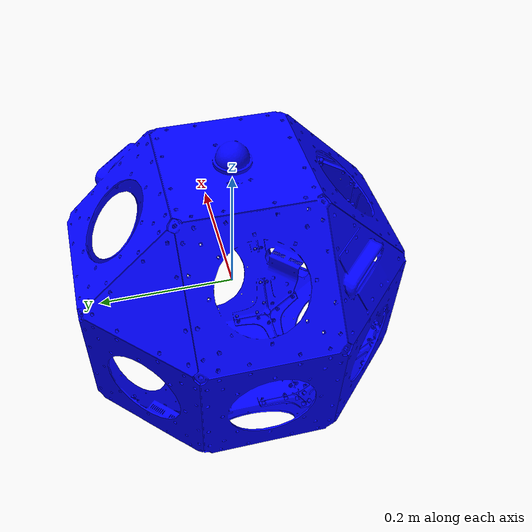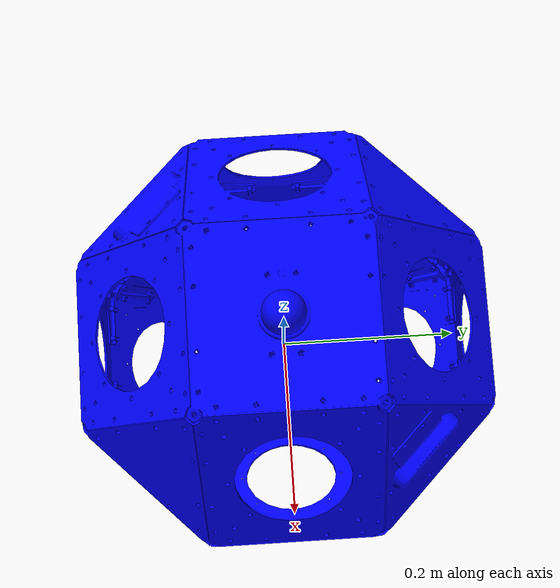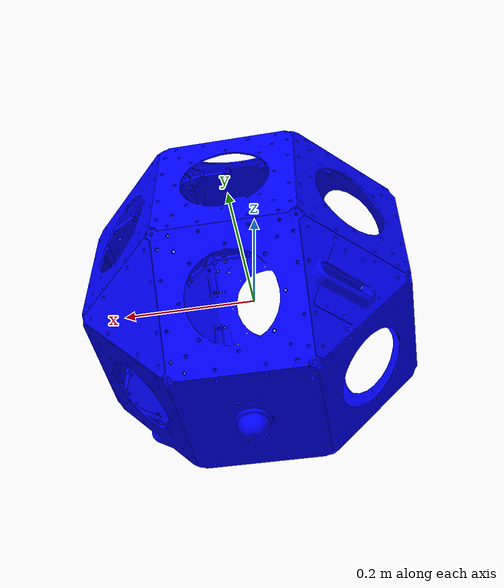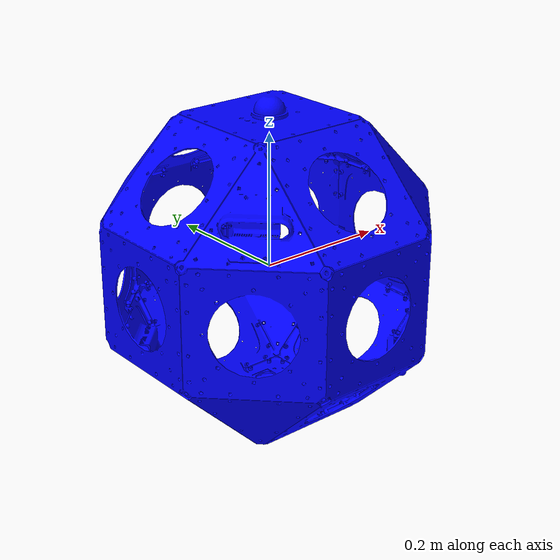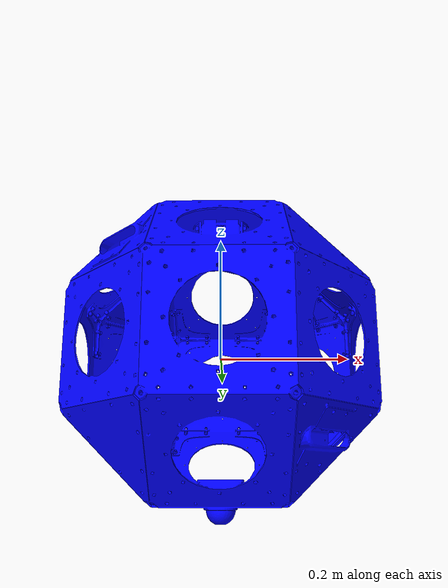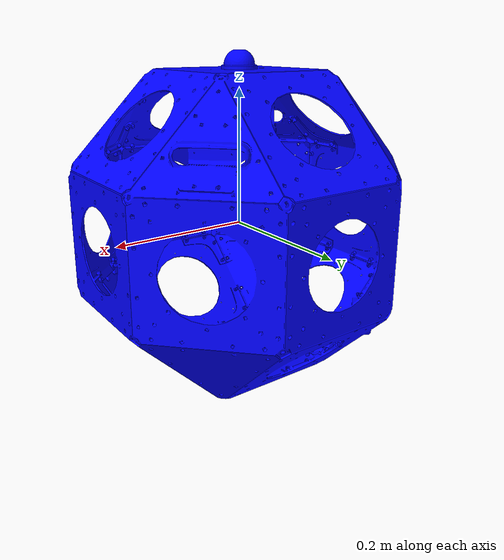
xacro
<?xml version="1.0"?>
<robot name="moonshot_robot" xmlns:xacro="http://www.ros.org/wiki/xacro">

    <material name="white">
        <color rgba="1 1 1 1"/>
    </material>

    <material name="silver">
        <color rgba="0.75 0.75 0.75 1"/>
    </material>

    <material name="black">
        <color rgba="0.2 0.2 0.2 1"/>
    </material>

    <!-- Define some constants -->
    <xacro:property name="polybody_n_1_length" value="0.5"/>
    <xacro:property name="polybody_n_1_width" value="0.15"/>
    <xacro:property name="polybody_n_1_height" value="0.15"/>
    <xacro:property name="polybody_n_1_mass" value="5.0"/>
    <!-- Define the body link -->

    <link name="polybody_n_1_base_link">
        <visual>
            <origin xyz="0 0 0" rpy="0 0  0"/>
            <geometry>
                <mesh filename="package://urdf_tutorial/stl/PolyBody/polybody_fullassem_wo_connector_d435_remesh.stl" scale="0.0001 0.0001 0.0001"/>
            </geometry>
            <material name="black">
                <color rgba="0 0 1 1"/>
            </material>
        </visual>
        <collision>
            <geometry>
                <mesh filename="package://urdf_tutorial/stl/PolyBody/polybody_fullassem_wo_connector_d435_remesh.stl" scale="0.0001 0.0001 0.0001"/>
            </geometry>
        </collision>
        <inertial>
            <mass value="${polybody_n_1_mass}"/>
            <origin xyz="0 0 0"/>
            <inertia ixx="0.1" ixy="0.0" ixz="0.0" iyy="0.1" iyz="0.0" izz="0.1"/>
        </inertial>
    </link>

    <link name="polybody_n_1_link_1"/>
    <link name="polybody_n_1_link_2"/>
    <link name="polybody_n_1_link_3"/>
    <link name="polybody_n_1_link_4"/>

    <link name="polybody_n_1_link_5"/>
    <link name="polybody_n_1_link_6"/>
    <link name="polybody_n_1_link_7"/>
    <link name="polybody_n_1_link_8"/>
    <link name="polybody_n_1_link_9"/>
    <link name="polybody_n_1_link_10"/>
    <link name="polybody_n_1_link_11"/>
    <link name="polybody_n_1_link_12"/>

    <link name="polybody_n_1_link_13"/>
    <link name="polybody_n_1_link_14"/>
    <link name="polybody_n_1_link_15"/>
    <link name="polybody_n_1_link_16"/>

    <link name="polybody_n_1_lidar_top"/>
    <link name="polybody_n_1_lidar_buttom"/>

    <joint name="polybody_n_1_joint_1" type="fixed">
        <parent link="polybody_n_1_base_link"/>
        <child link="polybody_n_1_link_1"/>
        <origin xyz="${0.2253375*3/4} 0 ${0.2253375*3/4}" rpy="0 ${-pi/4} 0"/>
    </joint>

    <joint name="polybody_n_1_joint_2" type="fixed">
        <parent link="polybody_n_1_base_link"/>
        <child link="polybody_n_1_link_2"/>
        <origin xyz="0 ${0.2253375*3/4} ${0.2253375*3/4}" rpy="0 ${-pi/4} ${pi/2}"/>
    </joint>

    <joint name="polybody_n_1_joint_3" type="fixed">
        <parent link="polybody_n_1_base_link"/>
        <child link="polybody_n_1_link_3"/>
        <origin xyz="${-0.2253375*3/4} 0 ${0.2253375*3/4}" rpy="0 ${-pi/4} ${-pi}"/>
    </joint>

    <joint name="polybody_n_1_joint_4" type="fixed">
        <parent link="polybody_n_1_base_link"/>
        <child link="polybody_n_1_link_4"/>
        <origin xyz="0 ${-0.2253375*3/4} ${0.2253375*3/4}" rpy="0 ${-pi/4} ${-pi/2}"/>
    </joint>

    <joint name="polybody_n_1_joint_5" type="fixed">
        <parent link="polybody_n_1_base_link"/>
        <child link="polybody_n_1_link_5"/>
        <origin xyz="${0.2253375} 0 0" rpy="0 0 0"/>
    </joint>
    <joint name="polybody_n_1_joint_6" type="fixed">
        <parent link="polybody_n_1_base_link"/>
        <child link="polybody_n_1_link_6"/>
        <origin xyz="${0.2253375*3/4} ${0.2253375*3/4} 0" rpy="0 0  ${pi/4}"/>
    </joint>
    <joint name="polybody_n_1_joint_7" type="fixed">
        <parent link="polybody_n_1_base_link"/>
        <child link="polybody_n_1_link_7"/>
        <origin xyz="0 ${0.2253375} 0" rpy="0 0 ${pi/2}"/>
    </joint>
    <joint name="polybody_n_1_joint_8" type="fixed">
        <parent link="polybody_n_1_base_link"/>
        <child link="polybody_n_1_link_8"/>
        <origin xyz="${-0.2253375*3/4} ${0.2253375*3/4} 0" rpy="0 0 ${pi*3/4}"/>
    </joint>
    <joint name="polybody_n_1_joint_9" type="fixed">
        <parent link="polybody_n_1_base_link"/>
        <child link="polybody_n_1_link_9"/>
        <origin xyz="${-0.2253375} 0 0" rpy="0 0 ${pi}"/>
    </joint>
    <joint name="polybody_n_1_joint_10" type="fixed">
        <parent link="polybody_n_1_base_link"/>
        <child link="polybody_n_1_link_10"/>
        <origin xyz="${-0.2253375*3/4} ${-0.2253375*3/4} 0" rpy="0 0 ${-pi*3/4}"/>
    </joint>
    <joint name="polybody_n_1_joint_11" type="fixed">
        <parent link="polybody_n_1_base_link"/>
        <child link="polybody_n_1_link_11"/>
        <origin xyz="0 ${-0.2253375} 0" rpy="0 0 ${-pi/2}"/>
    </joint>
    <joint name="polybody_n_1_joint_12" type="fixed">
        <parent link="polybody_n_1_base_link"/>
        <child link="polybody_n_1_link_12"/>
        <origin xyz="${0.2253375*3/4} ${-0.2253375*3/4} 0" rpy="0 0 ${-pi/4}"/>
    </joint>

    <joint name="polybody_n_1_joint_13" type="fixed">
        <parent link="polybody_n_1_base_link"/>
        <child link="polybody_n_1_link_13"/>
        <origin xyz="${0.2253375*3/4} 0 ${-0.2253375*3/4}" rpy="0 ${pi/4} 0"/>
    </joint>

    <joint name="polybody_n_1_joint_14" type="fixed">
        <parent link="polybody_n_1_base_link"/>
        <child link="polybody_n_1_link_14"/>
        <origin xyz="0 ${0.2253375*3/4} ${-0.2253375*3/4}" rpy="0 ${pi/4} ${pi/2}"/>
    </joint>

    <joint name="polybody_n_1_joint_15" type="fixed">
        <parent link="polybody_n_1_base_link"/>
        <child link="polybody_n_1_link_15"/>
        <origin xyz="${-0.2253375*3/4} 0 ${-0.2253375*3/4}" rpy="0 ${pi/4} ${-pi}"/>
    </joint>

    <joint name="polybody_n_1_joint_16" type="fixed">
        <parent link="polybody_n_1_base_link"/>
        <child link="polybody_n_1_link_16"/>
        <origin xyz="0 ${-0.2253375*3/4} ${-0.2253375*3/4}" rpy="0 ${pi/4} ${-pi/2}"/>
    </joint>

    <joint name="polybody_n_1_joint_lidar_top" type="fixed">
        <parent link="polybody_n_1_base_link"/>
        <child link="polybody_n_1_lidar_top"/>
        <origin xyz="0 0 ${0.2253375}" rpy="0 0 ${-pi/2}"/>
    </joint>

    <joint name="polybody_n_1_joint_lidar_buttom" type="fixed">
        <parent link="polybody_n_1_base_link"/>
        <child link="polybody_n_1_lidar_buttom"/>
        <origin xyz="0 0 ${-0.2253375}" rpy="${pi} 0 0"/>
    </joint>

</robot>
